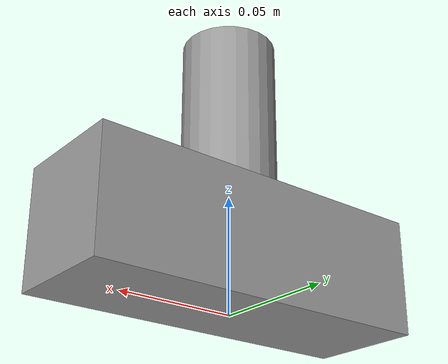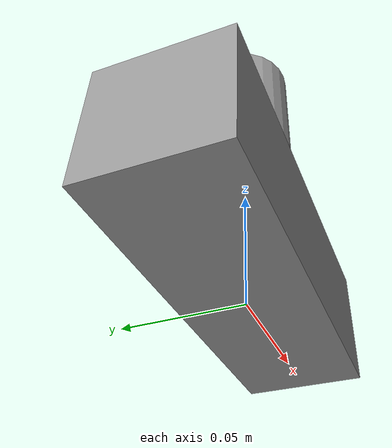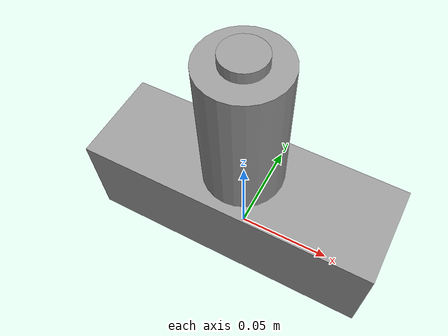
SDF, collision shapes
<sdf version='1.6'>
  <model name='pneumatic_gripper'>
    <plugin name="pneumatic_gripper_plugin" filename="libgazebo_ros_pneumatic_gripper.so">
        <gripper_link>box_link</gripper_link>
    </plugin>
    <link name='box_link'>
      <pose frame=''>0 0 0 0 -0 0</pose>
      <inertial>
        <pose frame=''>0 0 0.038571 0 -0 0</pose>
        <mass>0.07</mass>
        <inertia>
          <ixx>0.000142878</ixx>
          <ixy>0</ixy>
          <ixz>0</ixz>
          <iyy>0.000192878</iyy>
          <iyz>0</iyz>
          <izz>6.9e-05</izz>
        </inertia>
      </inertial>
      <collision name='box_link_collision'>
        <pose frame=''>0 0 0.025 0 -0 0</pose>
        <geometry>
          <box>
            <size>0.15 0.05 0.05</size>
          </box>
        </geometry>
        <surface>
          <contact>
            <ode/>
          </contact>
          <friction>
            <ode/>
          </friction>
        </surface>
      </collision>
      <collision name='box_link_fixed_joint_lump__gripper_base_collision_1'>
        <pose frame=''>0 0 0.085 0 -0 0</pose>
        <geometry>
          <cylinder>
            <length>0.07</length>
            <radius>0.02</radius>
          </cylinder>
        </geometry>
      </collision>
      <collision name='box_link_fixed_joint_lump__suction_cup_collision_2'>
        <pose frame=''>0 0 0.1225 0 -0 0</pose>
        <geometry>
          <cylinder>
            <length>0.005</length>
            <radius>0.01</radius>
          </cylinder>
        </geometry>
      </collision>
      <visual name='box_link_visual'>
        <pose frame=''>0 0 0.025 0 -0 0</pose>
        <geometry>
          <box>
            <size>0.15 0.05 0.05</size>
          </box>
        </geometry>
        <material>
          <script>
            <name>Gazebo/Grey</name>
            <uri>file://pneumatic_gripper/materials/scripts/gazebo.material</uri>
          </script>
        </material>
      </visual>
      <visual name='box_link_fixed_joint_lump__gripper_base_visual_1'>
        <pose frame=''>0 0 0.05 -3.14159 -0 -1.5708</pose>
        <geometry>
          <mesh>
            <scale>1 1 1</scale>
            <uri>model://pneumatic_gripper/meshes/pneumatic_gripper_w_cup.DAE</uri>
          </mesh>
        </geometry>
      </visual>
      <gravity>1</gravity>
      <velocity_decay/>
    </link>
  </model>
</sdf>
